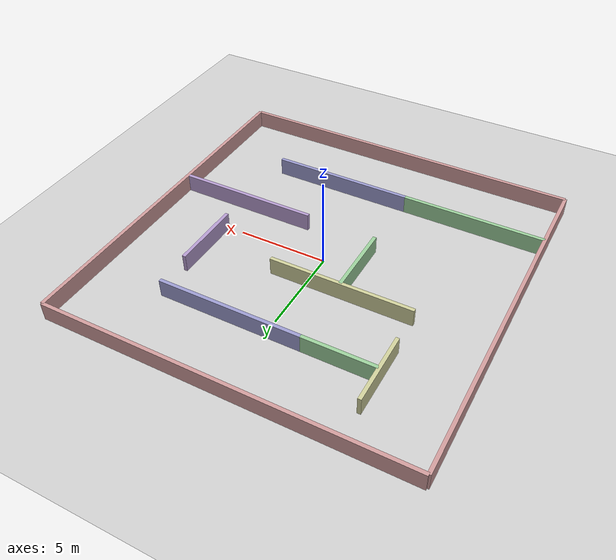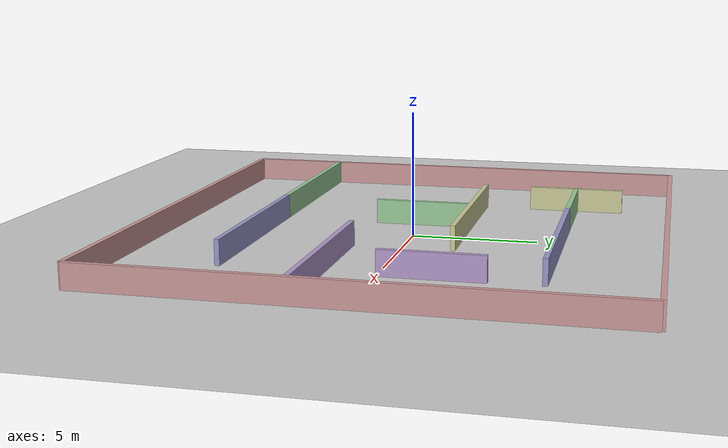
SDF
<?xml version="1.0"?>
<sdf version="1.6">
  <world name="default">
    <plugin
      filename="gz-sim-physics-system"
      name="gz::sim::systems::Physics">
    </plugin>
    <plugin
      filename="gz-sim-user-commands-system"
      name="gz::sim::systems::UserCommands">
    </plugin>
    <plugin
      filename="gz-sim-scene-broadcaster-system"
      name="gz::sim::systems::SceneBroadcaster">
    </plugin>
    <plugin
      filename="gz-sim-sensors-system"
      name="gz::sim::systems::Sensors">
      <render_engine>ogre2</render_engine>
    </plugin>
    <plugin
      filename="gz-sim-imu-system"
      name="gz::sim::systems::Imu">
    </plugin>

    <include>
      <uri>
        https://fuel.gazebosim.org/1.0/OpenRobotics/models/Ground Plane
      </uri>
    </include>

    <include>
      <uri>
        https://fuel.gazebosim.org/1.0/OpenRobotics/models/Sun
      </uri>
    </include>

    <scene>
      <shadows>false</shadows>
    </scene>

    <gui fullscreen='0'>
      <camera name='user_camera'>
        <pose frame=''>0.319654 -0.235002 9.29441 0 1.5138 0.009599</pose>
        <view_controller>orbit</view_controller>
        <projection_type>perspective</projection_type>
      </camera>
    </gui>

    <physics type="ode">
      <real_time_update_rate>1000.0</real_time_update_rate>
      <max_step_size>0.001</max_step_size>
      <real_time_factor>1</real_time_factor>
      <ode>
        <solver>
          <type>quick</type>
          <iters>150</iters>
          <precon_iters>0</precon_iters>
          <sor>1.400000</sor>
          <use_dynamic_moi_rescaling>1</use_dynamic_moi_rescaling>
        </solver>
        <constraints>
          <cfm>0.00001</cfm>
          <erp>0.2</erp>
          <contact_max_correcting_vel>2000.000000</contact_max_correcting_vel>
          <contact_surface_layer>0.01000</contact_surface_layer>
        </constraints>
      </ode>
    </physics>

    <!-- Maze walls -->
    <model name="maze">
      <static>true</static>
      <link name="walls">
        <!-- Outer boundaries -->

    <collision name="north_col">
      <geometry><box><size>20 0.2 1</size></box></geometry>
      <pose>0 10 0.5 0 0 0</pose>
    </collision>
    <visual name="north_vis">
      <geometry><box><size>20 0.2 1</size></box></geometry>
      <material><ambient>0.8 0.6 0.6 1</ambient></material>
      <pose>0 10 0.5 0 0 0</pose>
    </visual>

    <collision name="south_col">
      <geometry><box><size>20 0.2 1</size></box></geometry>
      <pose>0 -10 0.5 0 0 0</pose>
    </collision>
    <visual name="south_vis">
      <geometry><box><size>20 0.2 1</size></box></geometry>
      <material><ambient>0.8 0.6 0.6 1</ambient></material>
      <pose>0 -10 0.5 0 0 0</pose>
    </visual>

    <collision name="west_col">
      <geometry><box><size>0.2 20 1</size></box></geometry>
      <pose>-10 0 0.5 0 0 0</pose>
    </collision>
    <visual name="west_vis">
      <geometry><box><size>0.2 20 1</size></box></geometry>
      <material><ambient>0.8 0.6 0.6 1</ambient></material>
      <pose>-10 0 0.5 0 0 0</pose>
    </visual>

    <collision name="east_col">
      <geometry><box><size>0.2 20 1</size></box></geometry>
      <pose>10 0 0.5 0 0 0</pose>
    </collision>
    <visual name="east_vis">
      <geometry><box><size>0.2 20 1</size></box></geometry>
      <material><ambient>0.8 0.6 0.6 1</ambient></material>
      <pose>10 0 0.5 0 0 0</pose>
    </visual>

        <!-- Inner maze paths -->

    <collision name="h1_col">
      <geometry><box><size>4 0.2 1</size></box></geometry>
      <pose>-4 6 0.5 0 0 0</pose>
    </collision>
    <visual name="h1_vis">
      <geometry><box><size>4 0.2 1</size></box></geometry>
      <material><ambient>0.6 0.8 0.6 1</ambient></material>
      <pose>-4 6 0.5 0 0 0</pose>
    </visual>

    <collision name="h2_col">
      <geometry><box><size>8 0.2 1</size></box></geometry>
      <pose>2 6 0.5 0 0 0</pose>
    </collision>
    <visual name="h2_vis">
      <geometry><box><size>8 0.2 1</size></box></geometry>
      <material><ambient>0.6 0.6 0.8 1</ambient></material>
      <pose>2 6 0.5 0 0 0</pose>
    </visual>

    <collision name="h3_col">
      <geometry><box><size>8 0.2 1</size></box></geometry>
      <pose>-2 2 0.5 0 0 0</pose>
    </collision>
    <visual name="h3_vis">
      <geometry><box><size>8 0.2 1</size></box></geometry>
      <material><ambient>0.8 0.8 0.6 1</ambient></material>
      <pose>-2 2 0.5 0 0 0</pose>
    </visual>

    <collision name="h4_col">
      <geometry><box><size>8 0.2 1</size></box></geometry>
      <pose>6 -2 0.5 0 0 0</pose>
    </collision>
    <visual name="h4_vis">
      <geometry><box><size>8 0.2 1</size></box></geometry>
      <material><ambient>0.7 0.6 0.8 1</ambient></material>
      <pose>6 -2 0.5 0 0 0</pose>
    </visual>

    <collision name="h5_col">
      <geometry><box><size>8 0.2 1</size></box></geometry>
      <pose>-6 -6 0.5 0 0 0</pose>
    </collision>
    <visual name="h5_vis">
      <geometry><box><size>8 0.2 1</size></box></geometry>
      <material><ambient>0.6 0.8 0.6 1</ambient></material>
      <pose>-6 -6 0.5 0 0 0</pose>
    </visual>

    <collision name="h6_col">
      <geometry><box><size>8 0.2 1</size></box></geometry>
      <pose>2 -6 0.5 0 0 0</pose>
    </collision>
    <visual name="h6_vis">
      <geometry><box><size>8 0.2 1</size></box></geometry>
      <material><ambient>0.6 0.6 0.8 1</ambient></material>
      <pose>2 -6 0.5 0 0 0</pose>
    </visual>

    <collision name="v1_col">
      <geometry><box><size>0.2 4 1</size></box></geometry>
      <pose>-6 6 0.5 0 0 0</pose>
    </collision>
    <visual name="v1_vis">
      <geometry><box><size>0.2 4 1</size></box></geometry>
      <material><ambient>0.8 0.8 0.6 1</ambient></material>
      <pose>-6 6 0.5 0 0 0</pose>
    </visual>

    <collision name="v2_col">
      <geometry><box><size>0.2 4 1</size></box></geometry>
      <pose>6 2 0.5 0 0 0</pose>
    </collision>
    <visual name="v2_vis">
      <geometry><box><size>0.2 4 1</size></box></geometry>
      <material><ambient>0.7 0.6 0.8 1</ambient></material>
      <pose>6 2 0.5 0 0 0</pose>
    </visual>

    <collision name="v3_col">
      <geometry><box><size>0.2 4 1</size></box></geometry>
      <pose>-2 -0 0.5 0 0 0</pose>
    </collision>
    <visual name="v3_vis">
      <geometry><box><size>0.2 4 1</size></box></geometry>
      <material><ambient>0.6 0.8 0.6 1</ambient></material>
      <pose>-2 0 0.5 0 0 0</pose>
    </visual>

      </link>
    </model>

  </world>
</sdf>
